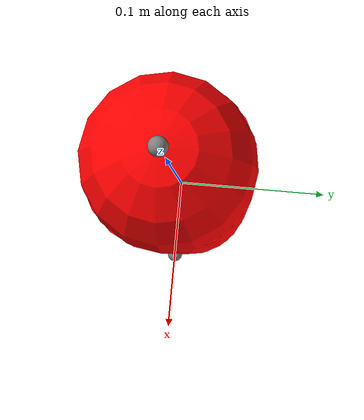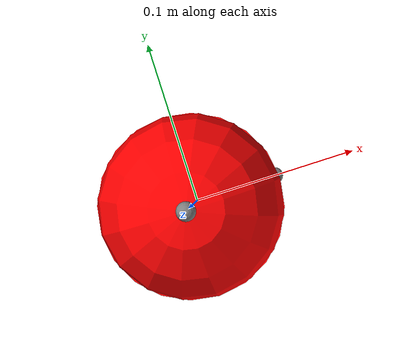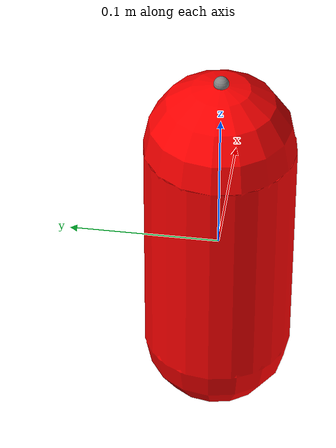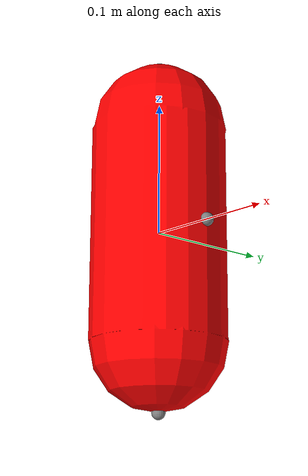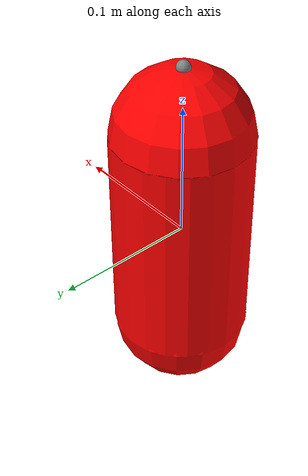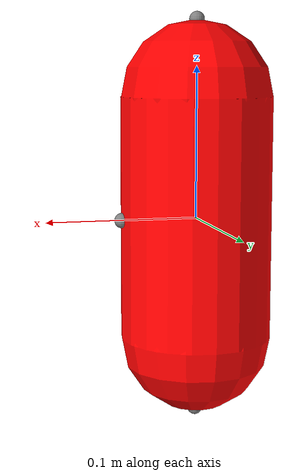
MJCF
<!-- sample of a general object defined in mujoco -->
<mujoco model="capsule">
    <worldbody>
        <body name="collision">
            <!-- Size = Radius of capsule, Half-height of cylinder -->
            <geom pos="0 0 0" size="0.05 0.08" type="capsule" rgba="1 0 0 1"/>
        </body>
        <body name="visual">
            <geom pos="0 0 0" size="0.05 0.08" type="capsule" rgba="1 0 0 1"  conaffinity="0" contype="0" mass="0.0001" group="1"/>
            <geom pos="0 0 0" size="0.05 0.08" type="capsule" rgba="1 0 0 1"  conaffinity="0" contype="0" mass="0.0001" group="0"/>
        </body>
        <!-- These sites are for stacking objects, for aligning objects on a table for example. -->
        <site pos="0 0 -0.13" name="bottom_site"/>
        <site pos="0 0 0.13" name="top_site"/>
        <site pos="0.05 0 0" name="horizontal_radius_site"/>
    </worldbody>
</mujoco>
